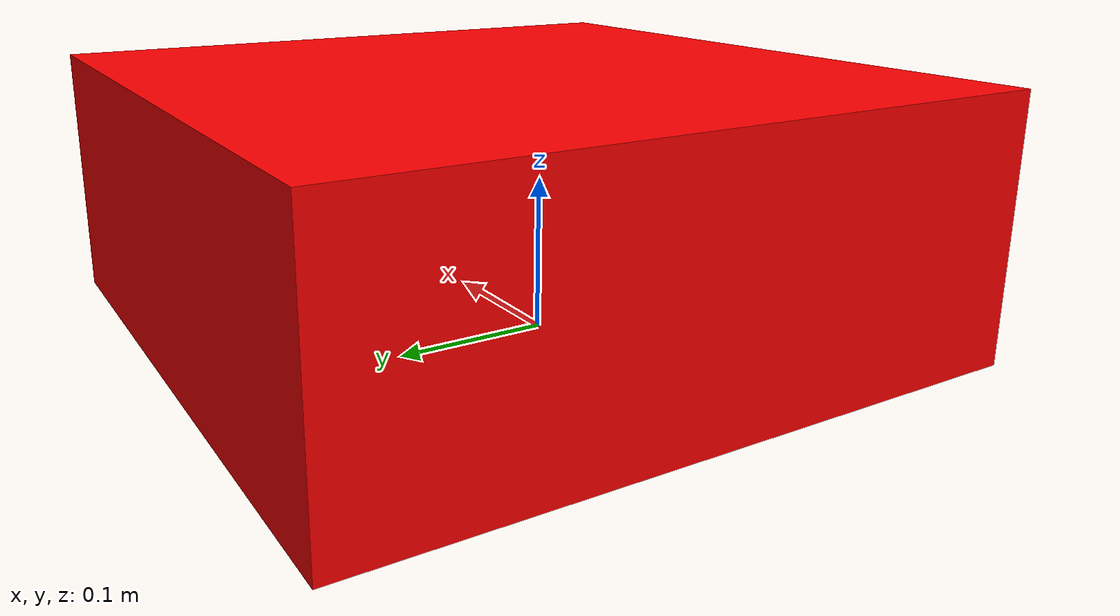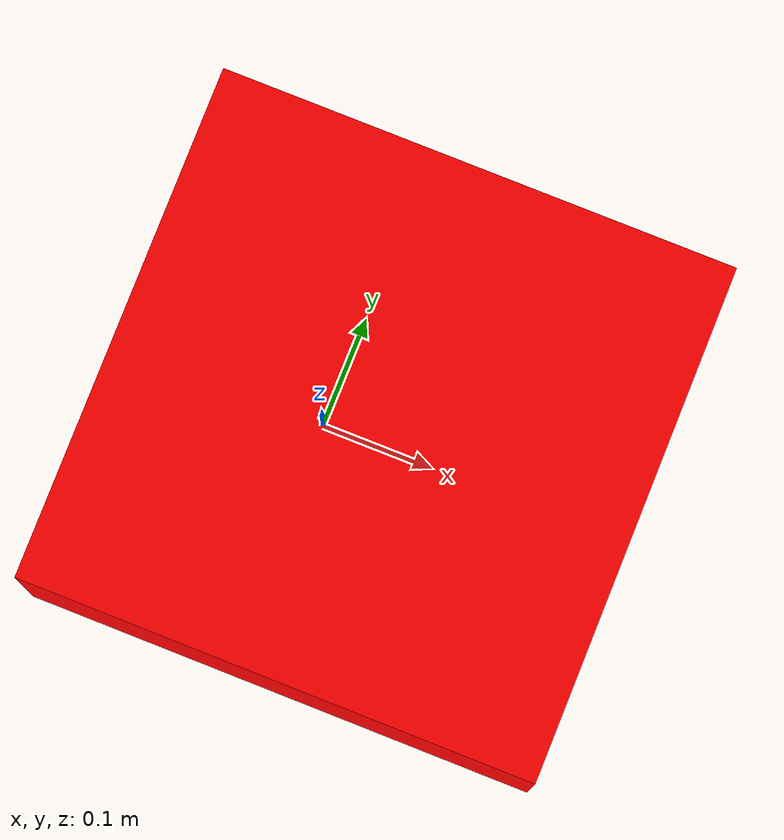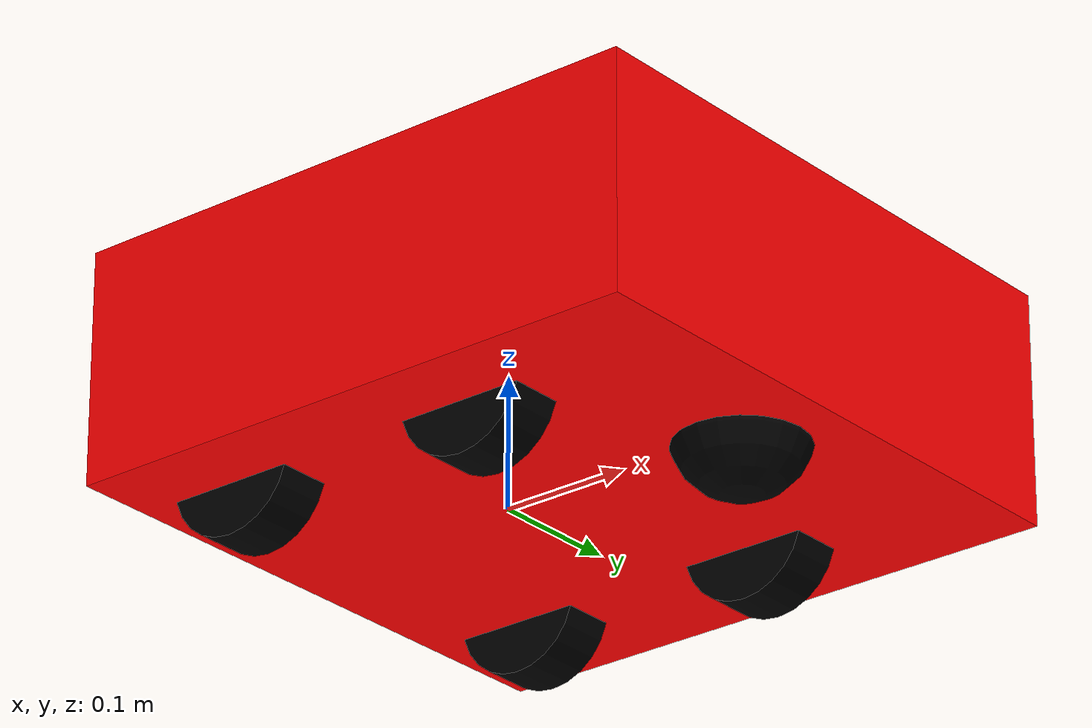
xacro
<?xml version="1.0"?>
    <robot xmlns:xacro="http://www.ros.org/wiki/xacro" >
    <xacro:include filename="inertial_macros.xacro" />

    <material name="white">
     <color rgba="1 1 1 1" />
    </material>

    <material name="orange">
     <color rgba="1 0.3 0.1 1"/>
    </material>

    <material name="blue">
     <color rgba="0.2 0.2 1 1"/>
    </material>

    <material name="black">
     <color rgba="0 0 0 1"/>
    </material>

    <material name="red">
     <color rgba="1 0 0 1"/>
    </material>

    <!-- BASE LINK -->
    <link name="base_link">
    </link>

    <!-- BASE_FOOTPRINT LINK -->
    <joint name="base_footprint_joint" type="fixed">
        <parent link="base_link"/>
        <child link="base_footprint"/>
        <origin xyz="0 0 0" rpy="0 0 0"/>
    </joint>
    <link name="base_footprint">
    </link>

    <joint name="chassis_joint" type="fixed">
        <parent link="base_link"/>
        <child link="chassis"/>
        <origin xyz="-0.1 0 0"/>
    </joint>

    <link name="chassis">
        <visual>
            <origin xyz="0.15 0 0.075" rpy="0 0 0"/>
            <geometry>
                <box size="0.455 0.455 0.175"/>
            </geometry>
            <material name="red"/>
        </visual>
        <collision>
            <origin xyz="0.15 0 0.075" rpy="0 0 0"/>
            <geometry>
                <box size="0.455 0.455 0.175"/>
            </geometry>
        </collision>
        <xacro:inertial_box mass="7" x="0.455" y="0.455" z="0.175">
            <origin xyz="0.15 0 0.075" rpy="0 0 0"/>
        </xacro:inertial_box>
    </link>
    <gazebo reference="chassis">
        <material>Gazebo/Red</material>
    </gazebo>

    <!-- LEFT WHEEL -->

    <joint name="left_wheel_joint" type="continuous">
        <parent link="base_link"/>
        <child link="left_wheel"/>
        <origin xyz="0.1 0.15 0" rpy="-${pi/2} 0 0"/>
        <axis xyz="0 0 1"/>
    </joint>

    <link name="left_wheel">
        <visual>
            <geometry>
                <cylinder length="0.04" radius="0.05" />
            </geometry>
            <material name="black"/>
        </visual>
        <collision>
            <geometry>
                <cylinder length="0.04" radius="0.05" />
            </geometry>
        </collision>
    <!-- ... visual and collision here ... -->
        <xacro:inertial_cylinder mass="0.1" length="0.04" radius="0.05">
            <origin xyz="0.1 0.15 0" rpy="-${pi/2} 0 0"/>
        </xacro:inertial_cylinder>
    </link>

    <gazebo reference="left_wheel">
        <material>Gazebo/Black</material>
        <mu1 value="1"/>
        <mu2 value="1"/>
    </gazebo>

    <!-- LEFT WHEEL 2-->

    <joint name="left_wheel_joint2" type="continuous">
        <parent link="base_link"/>
        <child link="left_wheel2"/>
        <origin xyz="-0.1 0.15 0" rpy="-${pi/2} 0 0"/>
        <axis xyz="0 0 1"/>
    </joint>

    <link name="left_wheel2">
        <visual>
            <geometry>
                <cylinder length="0.04" radius="0.05" />
            </geometry>
            <material name="black"/>
        </visual>
        <collision>
            <geometry>
                <cylinder length="0.04" radius="0.05" />
            </geometry>
        </collision>
    <!-- ... visual and collision here ... -->
        <xacro:inertial_cylinder mass="0.1" length="0.04" radius="0.05">
            <origin xyz="-0.1 0.15 0" rpy="-${pi/2} 0 0"/>
        </xacro:inertial_cylinder>
    </link>

    <gazebo reference="left_wheel2">
        <material>Gazebo/Black</material>
        <mu1 value="1"/>
        <mu2 value="1"/>
    </gazebo>

    <!-- RIGHT WHEEL -->

    <joint name="right_wheel_joint" type="continuous">
        <parent link="base_link"/>
        <child link="right_wheel"/>
        <origin xyz="0.1 -0.15 0" rpy="${pi/2} 0 0"/>
        <axis xyz="0 0 -1"/>
    </joint>

    <link name="right_wheel">
        <visual>
            <geometry>
                <cylinder length="0.04" radius="0.05" />
            </geometry>
            <material name="black"/>
        </visual>
        <collision>
            <geometry>
                <cylinder length="0.04" radius="0.05" />
            </geometry>
        </collision>
        <xacro:inertial_cylinder mass="0.1" length="0.04" radius="0.05">
            <origin xyz="0.1 -0.15 0" rpy="${pi/2} 0 0"/>
        </xacro:inertial_cylinder>
    </link>

    <gazebo reference="right_wheel">
        <material>Gazebo/Black</material>
        <mu1 value="1"/>
        <mu2 value="1"/>
    </gazebo>

     <!-- RIGHT WHEEL 2-->

    <joint name="right_wheel_joint2" type="continuous">
        <parent link="base_link"/>
        <child link="right_wheel2"/>
        <origin xyz="-0.1 -0.15 0" rpy="${pi/2} 0 0"/>
        <axis xyz="0 0 -1"/>
    </joint>

    <link name="right_wheel2">
        <visual>
            <geometry>
                <cylinder length="0.04" radius="0.05" />
            </geometry>
            <material name="black"/>
        </visual>
        <collision>
            <geometry>
                <cylinder length="0.04" radius="0.05" />
            </geometry>
        </collision>
        <xacro:inertial_cylinder mass="0.1" length="0.04" radius="0.05">
            <origin xyz="-0.1 -0.15 0" rpy="${pi/2} 0 0"/>
        </xacro:inertial_cylinder>
    </link>

    <gazebo reference="right_wheel2">
        <material>Gazebo/Black</material>
        <mu1 value="1"/>
        <mu2 value="1"/>
    </gazebo>

    <!-- CASTER WHEEL -->

    <joint name="caster_wheel_joint" type="fixed">
        <parent link="chassis"/>
        <child link="caster_wheel"/>
        <origin xyz="0.3 0 0" rpy="0 0 0"/>
    </joint>

    <link name="caster_wheel">
    <visual>
        <geometry>
            <sphere radius="0.05" />
        </geometry>
        <material name="black"/>
    </visual>
    <collision>
        <origin xyz="0.15 0 0.075" rpy="0 0 0"/>
        <geometry>
            <box size="0.3 0.3 0.15"/>
        </geometry>
    </collision>
    <xacro:inertial_sphere mass="0.1" radius="0.05">
       <origin xyz="0.3 0 0" rpy="0 0 0"/>
    </xacro:inertial_sphere>
    </link>
    <gazebo reference="caster_wheel">
        <material>Gazebo/Black</material>
        <mu1 value="0.2"/>
        <mu2 value="0.2"/>
    </gazebo>

</robot>
